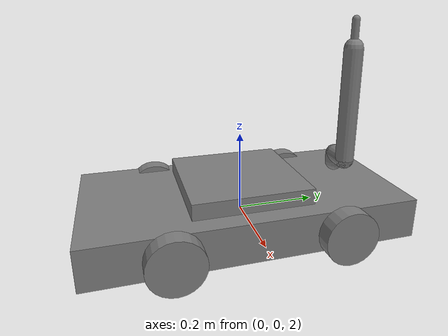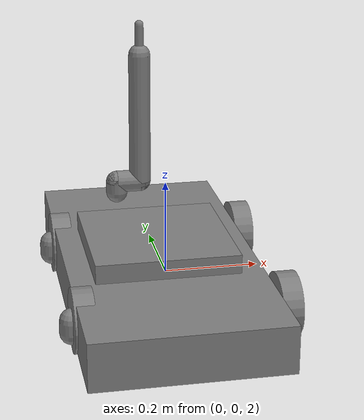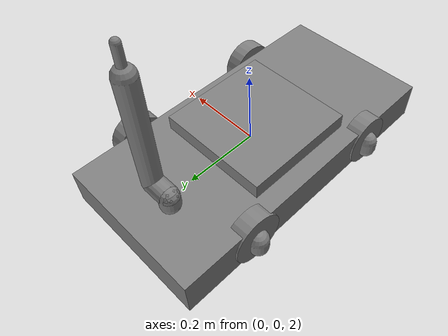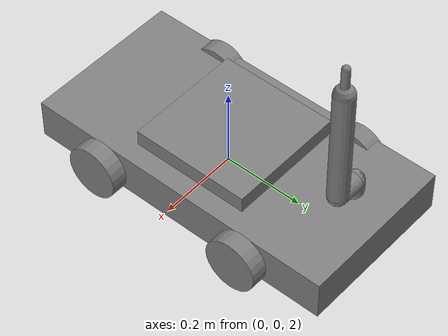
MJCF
<?xml version="1.0" encoding="utf-8"?>
<mujoco model="xmlrobot">
	<compiler inertiafromgeom="true"/>
	<option gravity="0 0 -9.8"/>
	<size nconmax="500" njmax="1000"/>
	<custom/>
	<default/>
	<asset/>
	<worldbody>
		<body name="root" pos="0 0 2" quat="1.0 0.0 0.0 0.0">
			<geom name="geomroot" pos="-0.02 0 0.07" size="0.15 0.15 0.02" type="box" quat="1.0 0.0 0.0 0.0"/>
			<body name="body1" pos="0 0 0" quat="1.0 0.0 0.0 0.0">
				<geom name="geombody1" pos="-0.02 0 0" size="0.2 0.4 0.05" type="box" quat="1.0 0.0 0.0 0.0"/>
				<joint axis="0 0 1" damping="1.0" limited="true" name="joint_joint1" pos="0 0 0" range="-5 5" stiffness="2.0" type="hinge"/>
				<body name="hand_mount1" pos="-0.05875 0.3 0.1" quat="0.70711 0.0 0.70711 0.0">
					<geom fromto="0 0 0 0.025 0 0" name="geomhand_mount1" size="0.025" type="capsule" quat="1.0 0.0 0.0 0.0"/>
					<joint axis="1 0 0" damping="1.0" limited="true" name="joint_joint6" pos="0 0 0" range="-180 180" stiffness="2.0" type="hinge"/>
					<body name="hand_link1" pos="0.0 0 0.055" quat="0.70711 0.0 0.70711 0.0">
						<geom fromto="0 0 0 0.055 0 0" name="geomhand_link1" size="0.025" type="capsule" quat="1.0 0.0 0.0 0.0"/>
						<joint axis="1 0 0" damping="1.0" limited="true" name="joint_joint7" pos="0 0 0" range="-89 89" stiffness="2.0" type="hinge"/>
						<body name="hand_link_21" pos="0 0 0" quat="0.70711 0.0 0.70711 0.0">
							<geom fromto="0 0 0 0.3 0 0" name="geomhand_link_21" size="0.025" type="capsule" quat="1.0 0.0 0.0 0.0"/>
							<joint axis="1 0 0" damping="1.0" limited="true" name="joint_joint8" pos="0 0 0" range="-60 60" stiffness="2.0" type="hinge"/>
							<body name="hand_21" pos="0.32 0 0" quat="1.0 0.0 0.0 0.0">
								<geom fromto="0 0 0 0.05 0 0" name="geomhand_21" size="0.01" type="capsule" quat="1.0 0.0 0.0 0.0"/>
								<joint axis="0 0 1" damping="1.0" limited="true" name="joint_joint10" pos="0 0 0" range="0.01 0.05" stiffness="2.0" type="slide"/>
							</body>
							<body name="hand_11" pos="0.32 0 0" quat="1.0 0.0 0.0 0.0">
								<geom fromto="0 0 0 0.05 0 0" name="geomhand_11" size="0.01" type="capsule" quat="1.0 0.0 0.0 0.0"/>
								<joint axis="0 0 1" damping="1.0" limited="true" name="joint_joint9" pos="0 0 0" range="-0.05 -0.01" stiffness="2.0" type="slide"/>
							</body>
						</body>
					</body>
				</body>
				<body name="limbmount4" pos="0.1875 -0.2 0" quat="0.70711 0.0 0.70711 0.0">
					<geom fromto="0 0 0 0.025 0 0" name="geomlimbmount4" size="0.025" type="capsule" quat="1.0 0.0 0.0 0.0"/>
					<joint axis="0 1 0" damping="1.0" limited="true" name="joint_joint5" pos="0 0 0" range="-45 45" stiffness="2.0" type="hinge"/>
					<body name="limbmount4_new_new" pos="0 0 0" quat="0.70711 0.0 -0.70711 0.0">
						<geom fromto="0 0 0 0.042 0 0" name="geomlimbmount4_new_new" pos="0 0 0" size="0.066" type="cylinder" euler="0 0 0"/>
						<joint axis="1 0 0" damping="1.0" limited="true" name="joint_limbmount4_new" pos="0 0 0" range="-45 45" stiffness="2.0" type="hinge"/>
					</body>
				</body>
				<body name="limbmount3" pos="-0.225 -0.2 0" quat="0.70711 0.0 0.70711 0.0">
					<geom fromto="0 0 0 0.025 0 0" name="geomlimbmount3" size="0.025" type="capsule" quat="1.0 0.0 0.0 0.0"/>
					<joint axis="0 1 0" damping="1.0" limited="true" name="joint_joint4" pos="0 0 0" range="-45 45" stiffness="2.0" type="hinge"/>
					<body name="motor3" pos="0 0 0" quat="0.70711 0.0 -0.70711 0.0">
						<geom fromto="0 0 0 0.042 0 0" name="geommotor3" pos="0 0 0" size="0.066" type="cylinder" euler="0 0 0"/>
						<joint axis="1 0 0" damping="1.0" limited="true" name="joint_joint13" pos="0 0 0" range="-45 45" stiffness="2.0" type="hinge"/>
					</body>
				</body>
				<body name="limbmount2" pos="-0.225 0.2 0" quat="0.70711 0.0 0.70711 0.0">
					<geom fromto="0 0 0 0.025 0 0" name="geomlimbmount2" size="0.025" type="capsule" quat="1.0 0.0 0.0 0.0"/>
					<joint axis="0 1 0" damping="1.0" limited="true" name="joint_joint3" pos="0 0 0" range="-45 45" stiffness="2.0" type="hinge"/>
					<body name="limbmount2_new_new" pos="0 0 0" quat="0.70711 0.0 -0.70711 0.0">
						<geom fromto="0 0 0 0.042 0 0" name="geomlimbmount2_new_new" pos="0 0 0" size="0.066" type="cylinder" euler="0 0 0"/>
						<joint axis="1 0 0" damping="1.0" limited="true" name="joint_limbmount2_new" pos="0 0 0" range="-45 45" stiffness="2.0" type="hinge"/>
					</body>
				</body>
				<body name="limbmount1" pos="0.1875 0.2 0" quat="0.70711 0.0 0.70711 0.0">
					<geom fromto="0 0 0 0.025 0 0" name="geomlimbmount1" size="0.025" type="capsule" quat="1.0 0.0 0.0 0.0"/>
					<joint axis="0 1 0" damping="1.0" limited="true" name="joint_joint2" pos="0 0 0" range="-45 45" stiffness="2.0" type="hinge"/>
					<body name="motor1" pos="0 0 0" quat="0.70711 0.0 -0.70711 0.0">
						<geom fromto="0 0 0 0.042 0 0" name="geommotor1" pos="0 0 0" size="0.066" type="cylinder" euler="0 0 0"/>
						<joint axis="1 0 0" damping="1.0" limited="true" name="joint_joint11" pos="0 0 0" range="-45 45" stiffness="2.0" type="hinge"/>
					</body>
				</body>
			</body>
		</body>
	</worldbody>
	<actuator>
		<motor ctrllimited="true" ctrlrange="-1 1" gear="22.5" joint="joint_joint1"/>
		<motor ctrllimited="true" ctrlrange="-1 1" gear="22.5" joint="joint_joint6"/>
		<motor ctrllimited="true" ctrlrange="-1 1" gear="22.5" joint="joint_joint7"/>
		<motor ctrllimited="true" ctrlrange="-1 1" gear="22.5" joint="joint_joint8"/>
		<motor ctrllimited="true" ctrlrange="-1 1" gear="22.5" joint="joint_joint10"/>
		<motor ctrllimited="true" ctrlrange="-1 1" gear="22.5" joint="joint_joint9"/>
		<motor ctrllimited="true" ctrlrange="-1 1" gear="22.5" joint="joint_joint5"/>
		<motor ctrllimited="true" ctrlrange="-1 1" gear="22.5" joint="joint_limbmount4_new"/>
		<motor ctrllimited="true" ctrlrange="-1 1" gear="22.5" joint="joint_joint4"/>
		<motor ctrllimited="true" ctrlrange="-1 1" gear="22.5" joint="joint_joint13"/>
		<motor ctrllimited="true" ctrlrange="-1 1" gear="22.5" joint="joint_joint3"/>
		<motor ctrllimited="true" ctrlrange="-1 1" gear="22.5" joint="joint_limbmount2_new"/>
		<motor ctrllimited="true" ctrlrange="-1 1" gear="22.5" joint="joint_joint2"/>
		<motor ctrllimited="true" ctrlrange="-1 1" gear="22.5" joint="joint_joint11"/>
	</actuator>
</mujoco>
